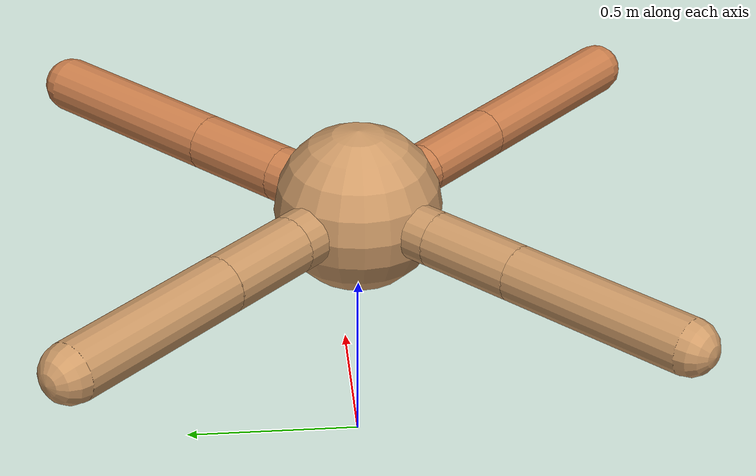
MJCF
<?xml version="1.0" ?>
<mujoco model="ant">

	<compiler angle="degree" coordinate="local" inertiafromgeom="true"/>

	<option integrator="RK4" timestep="0.01"/>

	<custom>

		<numeric data="0.0 0.0 0.55 1.0 0.0 0.0 0.0 0.0 1.0 0.0 -1.0 0.0 -1.0 0.0 1.0" name="init_qpos"/>

	</custom>

	<default>

		<joint armature="1" damping="1" limited="true"/>

		<geom conaffinity="0" condim="3" density="5.0" friction="1.5 0.1 0.1" margin="0.01" rgba="0.8 0.6 0.4 1"/>

	</default>

	<worldbody>

		<body name="torso" pos="0 0 0.75">

			<geom name="torso_geom" pos="0 0 0" size="0.2353567739271281" type="sphere"/>

			<!--joint armature="0" damping="0" limited="false" margin="0.01" name="root" pos="0 0 0" type="free"/-->

			<body name="front_left_leg" pos="0 0 0">

				<geom fromto="0 0 0 0.2 0.2 0" name="aux_1_geom" size="0.08069233689002556" type="capsule" rgba=".8 .5 .3 1"/>

				<body name="aux_1" pos="0.2 0.2 0">

					<joint axis="0 0 1" name="hip_1" pos="0.0 0.0 0.0" range="-40 40" type="hinge"/>

					<geom fromto="0 0 0 0.20368221720670637 0.20368221720670637 0" name="left_leg_geom" size="0.08069233689002556" type="capsule" rgba=".8 .5 .3 1"/>

					<body pos="0.20368221720670637 0.20368221720670637 0" name="front_left_foot">

						<joint axis="-1 1 0" name="ankle_1" pos="0.0 0.0 0.0" range="30 100" type="hinge"/>

						<geom fromto="0 0 0 0.40736443441341275 0.40736443441341275 0" name="left_ankle_geom" size="0.08069233689002556" type="capsule" rgba=".8 .5 .3 1"/>

					</body>

				</body>

			</body>

			<body name="front_right_leg" pos="0 0 0">

				<geom fromto="0 0 0 -0.2 0.2 0" name="aux_2_geom" size="0.08292948050380183" type="capsule"/>

				<body name="aux_2" pos="-0.2 0.2 0">

					<joint axis="0 0 1" name="hip_2" pos="0.0 0.0 0.0" range="-40 40" type="hinge"/>

					<geom fromto="0 0 0 -0.19126017064256826 0.19126017064256826 0" name="right_leg_geom" size="0.08292948050380183" type="capsule"/>

					<body pos="-0.19126017064256826 0.19126017064256826 0" name="front_right_foot">

						<joint axis="1 1 0" name="ankle_2" pos="0.0 0.0 0.0" range="-100 -30" type="hinge"/>

						<geom fromto="0 0 0 -0.3825203412851365 0.3825203412851365 0" name="right_ankle_geom" size="0.08292948050380183" type="capsule"/>

					</body>

				</body>

			</body>

			<body name="left_back_leg" pos="0 0 0">

				<geom fromto="0 0 0 -0.2 -0.2 0" name="aux_3_geom" size="0.07841633005581472" type="capsule"/>

				<body name="aux_3" pos="-0.2 -0.2 0">

					<joint axis="0 0 1" name="hip_3" pos="0.0 0.0 0.0" range="-40 40" type="hinge"/>

					<geom fromto="0 0 0 -0.19168711832200125 -0.19168711832200125 0" name="back_leg_geom" size="0.07841633005581472" type="capsule"/>

					<body pos="-0.19168711832200125 -0.19168711832200125 0" name="left_back_foot">

						<joint axis="-1 1 0" name="ankle_3" pos="0.0 0.0 0.0" range="-100 -30" type="hinge"/>

						<geom fromto="0 0 0 -0.3833742366440025 -0.3833742366440025 0" name="third_ankle_geom" size="0.07841633005581472" type="capsule"/>

					</body>

				</body>

			</body>

			<body name="right_back_leg" pos="0 0 0">

				<geom fromto="0 0 0 0.2 -0.2 0" name="aux_4_geom" size="0.07394420822254089" type="capsule" rgba=".8 .5 .3 1"/>

				<body name="aux_4" pos="0.2 -0.2 0">

					<joint axis="0 0 1" name="hip_4" pos="0.0 0.0 0.0" range="-40 40" type="hinge"/>

					<geom fromto="0 0 0 0.19918726784964944 -0.19918726784964944 0" name="rightback_leg_geom" size="0.07394420822254089" type="capsule" rgba=".8 .5 .3 1"/>

					<body pos="0.19918726784964944 -0.19918726784964944 0" name="right_back_foot">

						<joint axis="1 1 0" name="ankle_4" pos="0.0 0.0 0.0" range="30 100" type="hinge"/>

						<geom fromto="0 0 0 0.39837453569929887 -0.39837453569929887 0" name="fourth_ankle_geom" size="0.07394420822254089" type="capsule" rgba=".8 .5 .3 1"/>

					</body>

				</body>

			</body>

		</body>

	</worldbody>

	<actuator>

		<motor ctrllimited="true" ctrlrange="-1.0 1.0" joint="hip_4" gear="150"/>

		<motor ctrllimited="true" ctrlrange="-1.0 1.0" joint="ankle_4" gear="150"/>

		<motor ctrllimited="true" ctrlrange="-1.0 1.0" joint="hip_1" gear="150"/>

		<motor ctrllimited="true" ctrlrange="-1.0 1.0" joint="ankle_1" gear="150"/>

		<motor ctrllimited="true" ctrlrange="-1.0 1.0" joint="hip_2" gear="150"/>

		<motor ctrllimited="true" ctrlrange="-1.0 1.0" joint="ankle_2" gear="150"/>

		<motor ctrllimited="true" ctrlrange="-1.0 1.0" joint="hip_3" gear="150"/>

		<motor ctrllimited="true" ctrlrange="-1.0 1.0" joint="ankle_3" gear="150"/>

	</actuator>

</mujoco>
